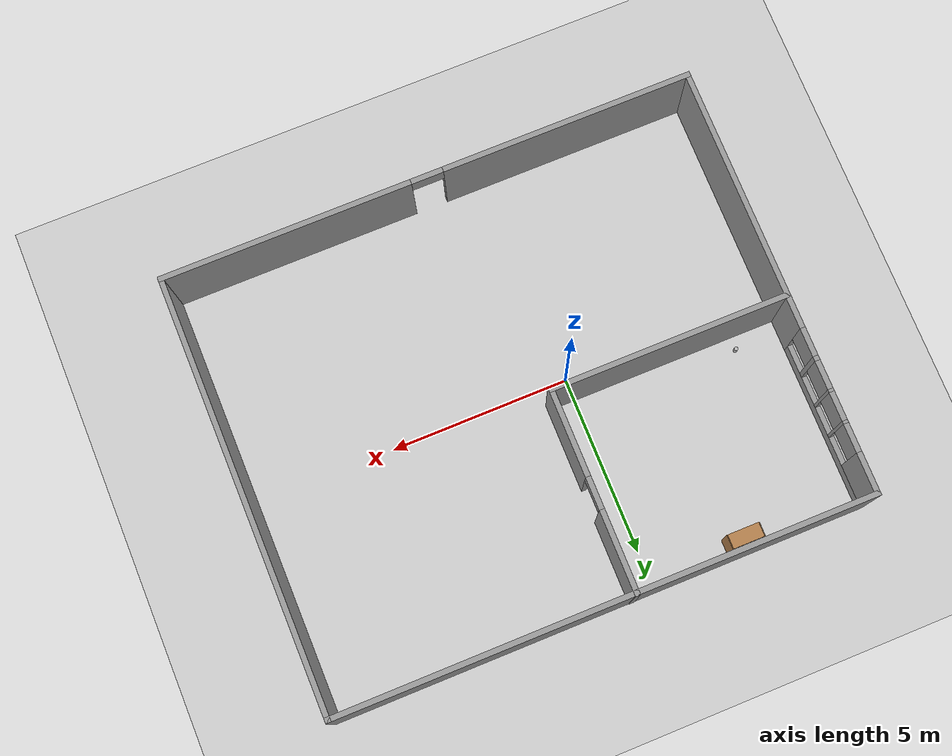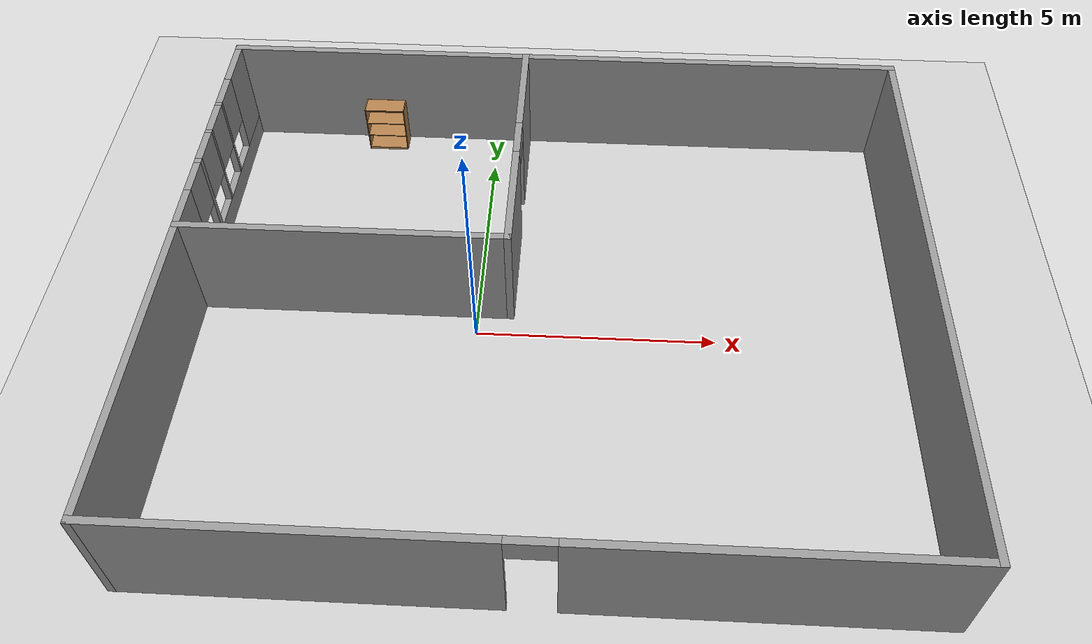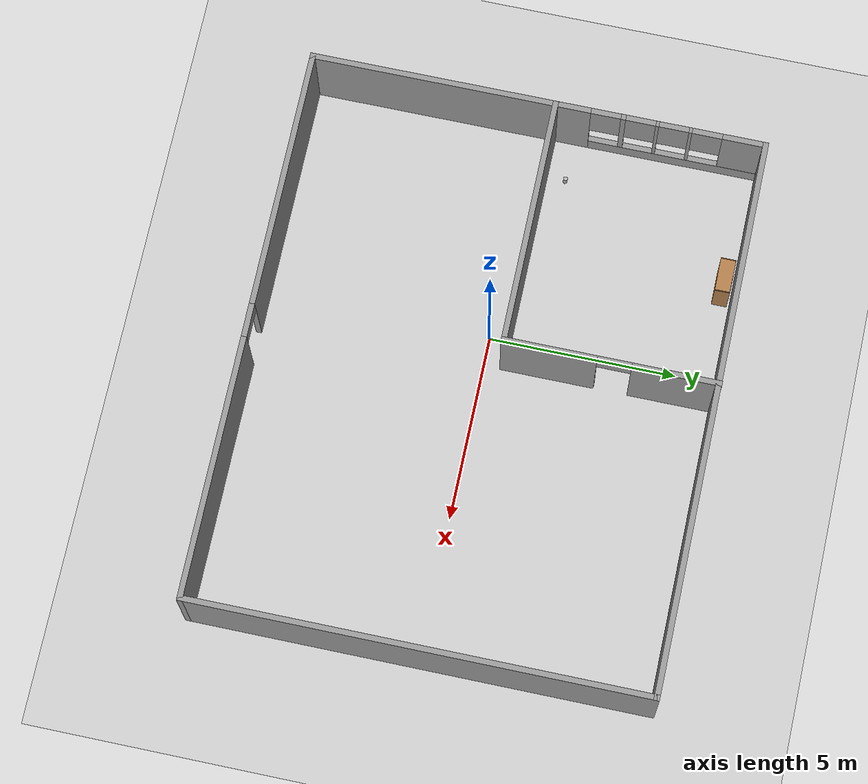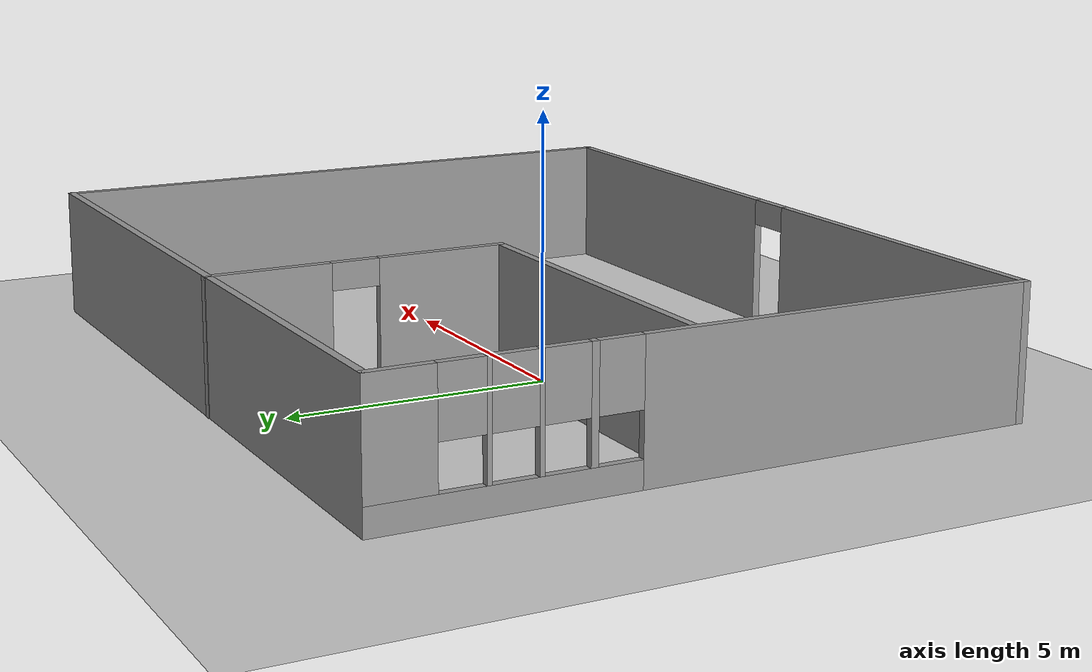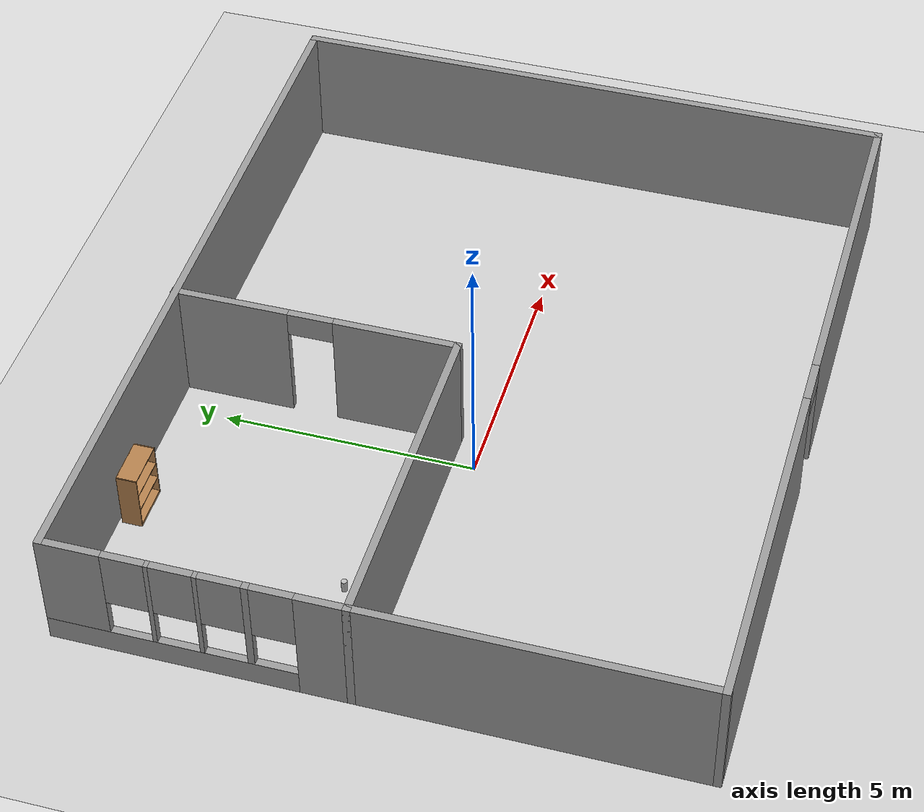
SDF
<sdf version="1.7">
 <world name="default">
  <light name="sun" type="directional">
   <pose>0 0 10 0 -0 0</pose>
   <diffuse>0.8 0.8 0.8 1</diffuse>
   <specular>0.2 0.2 0.2 1</specular>
   <attenuation>
    <range>1000</range>
    <constant>0.9</constant>
    <linear>0.01</linear>
    <quadratic>0.001</quadratic>
   </attenuation>
   <direction>-0.5 0.1 -0.9</direction>
   <spot><inner_angle>0</inner_angle><outer_angle>0</outer_angle><falloff>0</falloff></spot>
  </light>
  <model name="ground_plane">
   <static>1</static>
   <link name="link">
    <collision name="collision">
     <geometry><plane><normal>0 0 1</normal><size>100 100</size></plane></geometry>
     <surface>
      <contact><collide_bitmask>65535</collide_bitmask></contact>
      <friction><ode><mu>100</mu><mu2>50</mu2></ode></friction>
     </surface>
    </collision>
    <visual name="visual">
     <cast_shadows>0</cast_shadows>
     <geometry><plane><normal>0 0 1</normal><size>100 100</size></plane></geometry>
     <material>
      <script>
       <uri>model://Nursing_Home/materials/scripts/</uri>
       <uri>model://Nursing_Home/materials/textures/</uri>
       <name>FloorMat/Diffuse</name>
      </script>
     </material>
    </visual>
   </link>
  </model>
  <gravity>0 0 -9.8</gravity>
  <magnetic_field>6e-06 2.3e-05 -4.2e-05</magnetic_field>
  <atmosphere type="adiabatic"/>
  <physics type="ode">
   <max_step_size>0.001</max_step_size>
   <real_time_factor>1</real_time_factor>
   <real_time_update_rate>1000</real_time_update_rate>
  </physics>
  <scene><ambient>0.4 0.4 0.4 1</ambient><background>0.7 0.7 0.7 1</background><shadows>1</shadows></scene>
  <spherical_coordinates>
   <surface_model>EARTH_WGS84</surface_model>
   <latitude_deg>0</latitude_deg>
   <longitude_deg>0</longitude_deg>
   <elevation>0</elevation>
   <heading_deg>0</heading_deg>
  </spherical_coordinates>
  <model name="Nursing_Home">
   <pose>1.5165 0.049427 0 0 -0 0</pose>
   <link name="Wall_22">
    <pose>-7.425 -0.006674 0 0 -0 1.5708</pose>
    <visual name="Wall_22_Visual_0">
     <pose>-2.35623 0 1.25 0 -0 0</pose>
     <geometry><box><size>7.53754 0.15 2.5</size></box></geometry>
     <material>
      <script><uri>file://media/materials/scripts/gazebo.material</uri><name>Gazebo/Grey</name></script>
      <ambient>1 1 1 1</ambient>
     </material>
     <meta><layer>0</layer></meta>
    </visual>
    <collision name="Wall_22_Collision_0">
     <geometry><box><size>7.53754 0.15 2.5</size></box></geometry>
     <pose>-2.35623 0 1.25 0 -0 0</pose>
    </collision>
    <visual name="Wall_22_Visual_1">
     <pose>3.76877 0 0.25 0 -0 0</pose>
     <geometry><box><size>4.71246 0.15 0.5</size></box></geometry>
     <material>
      <script><uri>file://media/materials/scripts/gazebo.material</uri><name>Gazebo/Grey</name></script>
      <ambient>1 1 1 1</ambient>
     </material>
     <meta><layer>0</layer></meta>
    </visual>
    <collision name="Wall_22_Collision_1">
     <geometry><box><size>4.71246 0.15 0.5</size></box></geometry>
     <pose>3.76877 0 0.25 0 -0 0</pose>
    </collision>
    <visual name="Wall_22_Visual_2">
     <pose>2.27778 0 1.5 0 -0 0</pose>
     <geometry><box><size>0.130478 0.15 2</size></box></geometry>
     <material>
      <script><uri>file://media/materials/scripts/gazebo.material</uri><name>Gazebo/Grey</name></script>
      <ambient>1 1 1 1</ambient>
     </material>
     <meta><layer>0</layer></meta>
    </visual>
    <collision name="Wall_22_Collision_2">
     <geometry><box><size>0.130478 0.15 2</size></box></geometry>
     <pose>2.27778 0 1.5 0 -0 0</pose>
    </collision>
    <visual name="Wall_22_Visual_3">
     <pose>3.185 0 1.5 0 -0 0</pose>
     <geometry><box><size>0.083955 0.15 2</size></box></geometry>
     <material>
      <script><uri>file://media/materials/scripts/gazebo.material</uri><name>Gazebo/Grey</name></script>
      <ambient>1 1 1 1</ambient>
     </material>
     <meta><layer>0</layer></meta>
    </visual>
    <collision name="Wall_22_Collision_3">
     <geometry><box><size>0.083955 0.15 2</size></box></geometry>
     <pose>3.185 0 1.5 0 -0 0</pose>
    </collision>
    <visual name="Wall_22_Visual_4">
     <pose>4.06895 0 1.5 0 -0 0</pose>
     <geometry><box><size>0.083954 0.15 2</size></box></geometry>
     <material>
      <script><uri>file://media/materials/scripts/gazebo.material</uri><name>Gazebo/Grey</name></script>
      <ambient>1 1 1 1</ambient>
     </material>
     <meta><layer>0</layer></meta>
    </visual>
    <collision name="Wall_22_Collision_4">
     <geometry><box><size>0.083954 0.15 2</size></box></geometry>
     <pose>4.06895 0 1.5 0 -0 0</pose>
    </collision>
    <visual name="Wall_22_Visual_5">
     <pose>5.51796 0 1.5 0 -0 0</pose>
     <geometry><box><size>1.21407 0.15 2</size></box></geometry>
     <material>
      <script><uri>file://media/materials/scripts/gazebo.material</uri><name>Gazebo/Grey</name></script>
      <ambient>1 1 1 1</ambient>
     </material>
     <meta><layer>0</layer></meta>
    </visual>
    <collision name="Wall_22_Collision_5">
     <geometry><box><size>1.21407 0.15 2</size></box></geometry>
     <pose>5.51796 0 1.5 0 -0 0</pose>
    </collision>
    <visual name="Wall_22_Visual_6">
     <pose>1.81254 0 1.9 0 -0 0</pose>
     <geometry><box><size>0.8 0.15 1.2</size></box></geometry>
     <material>
      <script><uri>file://media/materials/scripts/gazebo.material</uri><name>Gazebo/Grey</name></script>
      <ambient>1 1 1 1</ambient>
     </material>
     <meta><layer>0</layer></meta>
    </visual>
    <collision name="Wall_22_Collision_6">
     <geometry><box><size>0.8 0.15 1.2</size></box></geometry>
     <pose>1.81254 0 1.9 0 -0 0</pose>
    </collision>
    <visual name="Wall_22_Visual_7">
     <pose>2.74302 0 1.9 0 -0 0</pose>
     <geometry><box><size>0.8 0.15 1.2</size></box></geometry>
     <material>
      <script><uri>file://media/materials/scripts/gazebo.material</uri><name>Gazebo/Grey</name></script>
      <ambient>1 1 1 1</ambient>
     </material>
     <meta><layer>0</layer></meta>
    </visual>
    <collision name="Wall_22_Collision_7">
     <geometry><box><size>0.8 0.15 1.2</size></box></geometry>
     <pose>2.74302 0 1.9 0 -0 0</pose>
    </collision>
    <visual name="Wall_22_Visual_8">
     <pose>3.62697 0 1.9 0 -0 0</pose>
     <geometry><box><size>0.8 0.15 1.2</size></box></geometry>
     <material>
      <script><uri>file://media/materials/scripts/gazebo.material</uri><name>Gazebo/Grey</name></script>
      <ambient>1 1 1 1</ambient>
     </material>
     <meta><layer>0</layer></meta>
    </visual>
    <collision name="Wall_22_Collision_8">
     <geometry><box><size>0.8 0.15 1.2</size></box></geometry>
     <pose>3.62697 0 1.9 0 -0 0</pose>
    </collision>
    <visual name="Wall_22_Visual_9">
     <pose>4.51093 0 1.9 0 -0 0</pose>
     <geometry><box><size>0.8 0.15 1.2</size></box></geometry>
     <material>
      <script><uri>file://media/materials/scripts/gazebo.material</uri><name>Gazebo/Grey</name></script>
      <ambient>1 1 1 1</ambient>
     </material>
     <meta><layer>0</layer></meta>
    </visual>
    <collision name="Wall_22_Collision_9">
     <geometry><box><size>0.8 0.15 1.2</size></box></geometry>
     <pose>4.51093 0 1.9 0 -0 0</pose>
    </collision>
   </link>
   <link name="Wall_23">
    <collision name="Wall_23_Collision">
     <geometry><box><size>15 0.15 2.5</size></box></geometry>
     <pose>0 0 1.25 0 -0 0</pose>
    </collision>
    <visual name="Wall_23_Visual">
     <pose>0 0 1.25 0 -0 0</pose>
     <geometry><box><size>15 0.15 2.5</size></box></geometry>
     <material>
      <script><uri>file://media/materials/scripts/gazebo.material</uri><name>Gazebo/Grey</name></script>
      <ambient>1 1 1 1</ambient>
     </material>
     <meta><layer>0</layer></meta>
    </visual>
    <pose>-0 6.04333 0 0 -0 0</pose>
   </link>
   <link name="Wall_24">
    <collision name="Wall_24_Collision">
     <geometry><box><size>12.25 0.15 2.5</size></box></geometry>
     <pose>0 0 1.25 0 -0 0</pose>
    </collision>
    <visual name="Wall_24_Visual">
     <pose>0 0 1.25 0 -0 0</pose>
     <geometry><box><size>12.25 0.15 2.5</size></box></geometry>
     <material>
      <script><uri>file://media/materials/scripts/gazebo.material</uri><name>Gazebo/Grey</name></script>
      <ambient>1 1 1 1</ambient>
     </material>
     <meta><layer>0</layer></meta>
    </visual>
    <pose>7.425 -0.006674 0 0 -0 -1.5708</pose>
   </link>
   <link name="Wall_25">
    <pose>-0 -6.05667 0 0 -0 3.14159</pose>
    <visual name="Wall_25_Visual_0">
     <pose>-3.98441 0 1.25 0 -0 0</pose>
     <geometry><box><size>7.03117 0.15 2.5</size></box></geometry>
     <material>
      <script><uri>file://media/materials/scripts/gazebo.material</uri><name>Gazebo/Grey</name></script>
      <ambient>1 1 1 1</ambient>
     </material>
     <meta><layer>0</layer></meta>
    </visual>
    <collision name="Wall_25_Collision_0">
     <geometry><box><size>7.03117 0.15 2.5</size></box></geometry>
     <pose>-3.98441 0 1.25 0 -0 0</pose>
    </collision>
    <visual name="Wall_25_Visual_1">
     <pose>3.96559 0 1.25 0 -0 0</pose>
     <geometry><box><size>7.06883 0.15 2.5</size></box></geometry>
     <material>
      <script><uri>file://media/materials/scripts/gazebo.material</uri><name>Gazebo/Grey</name></script>
      <ambient>1 1 1 1</ambient>
     </material>
     <meta><layer>0</layer></meta>
    </visual>
    <collision name="Wall_25_Collision_1">
     <geometry><box><size>7.06883 0.15 2.5</size></box></geometry>
     <pose>3.96559 0 1.25 0 -0 0</pose>
    </collision>
    <visual name="Wall_25_Visual_2">
     <pose>-0.018826 0 2.25 0 -0 0</pose>
     <geometry><box><size>0.9 0.15 0.5</size></box></geometry>
     <material>
      <script><uri>file://media/materials/scripts/gazebo.material</uri><name>Gazebo/Grey</name></script>
      <ambient>1 1 1 1</ambient>
     </material>
     <meta><layer>0</layer></meta>
    </visual>
    <collision name="Wall_25_Collision_2">
     <geometry><box><size>0.9 0.15 0.5</size></box></geometry>
     <pose>-0.018826 0 2.25 0 -0 0</pose>
    </collision>
   </link>
   <link name="Wall_27">
    <collision name="Wall_27_Collision">
     <geometry><box><size>6.75 0.15 2.5</size></box></geometry>
     <pose>0 0 1.25 0 -0 0</pose>
    </collision>
    <visual name="Wall_27_Visual">
     <pose>0 0 1.25 0 -0 0</pose>
     <geometry><box><size>6.75 0.15 2.5</size></box></geometry>
     <material>
      <script><uri>file://media/materials/scripts/gazebo.material</uri><name>Gazebo/Grey</name></script>
      <ambient>1 1 1 1</ambient>
     </material>
     <meta><layer>0</layer></meta>
    </visual>
    <pose>-4.125 0.456674 0 0 -0 0</pose>
   </link>
   <link name="Wall_28">
    <pose>-0.825 3.25667 0 0 -0 1.5708</pose>
    <visual name="Wall_28_Visual_0">
     <pose>-1.62026 0 1.25 0 -0 0</pose>
     <geometry><box><size>2.50948 0.15 2.5</size></box></geometry>
     <material>
      <script><uri>file://media/materials/scripts/gazebo.material</uri><name>Gazebo/Grey</name></script>
      <ambient>1 1 1 1</ambient>
     </material>
     <meta><layer>0</layer></meta>
    </visual>
    <collision name="Wall_28_Collision_0">
     <geometry><box><size>2.50948 0.15 2.5</size></box></geometry>
     <pose>-1.62026 0 1.25 0 -0 0</pose>
    </collision>
    <visual name="Wall_28_Visual_1">
     <pose>1.70474 0 1.25 0 -0 0</pose>
     <geometry><box><size>2.34052 0.15 2.5</size></box></geometry>
     <material>
      <script><uri>file://media/materials/scripts/gazebo.material</uri><name>Gazebo/Grey</name></script>
      <ambient>1 1 1 1</ambient>
     </material>
     <meta><layer>0</layer></meta>
    </visual>
    <collision name="Wall_28_Collision_1">
     <geometry><box><size>2.34052 0.15 2.5</size></box></geometry>
     <pose>1.70474 0 1.25 0 -0 0</pose>
    </collision>
    <visual name="Wall_28_Visual_2">
     <pose>0.084483 0 2.25 0 -0 0</pose>
     <geometry><box><size>0.9 0.15 0.5</size></box></geometry>
     <material>
      <script><uri>file://media/materials/scripts/gazebo.material</uri><name>Gazebo/Grey</name></script>
      <ambient>1 1 1 1</ambient>
     </material>
     <meta><layer>0</layer></meta>
    </visual>
    <collision name="Wall_28_Collision_2">
     <geometry><box><size>0.9 0.15 0.5</size></box></geometry>
     <pose>0.084483 0 2.25 0 -0 0</pose>
    </collision>
   </link>
   <static>1</static>
  </model>
  <model name="bookshelf">
   <static>1</static>
   <link name="link">
    <inertial><mass>1</mass></inertial>
    <collision name="back">
     <pose>0 0.005 0.6 0 -0 0</pose>
     <geometry><box><size>0.9 0.01 1.2</size></box></geometry>
    </collision>
    <visual name="visual1">
     <pose>0 0.005 0.6 0 -0 0</pose>
     <geometry><box><size>0.9 0.01 1.2</size></box></geometry>
     <material>
      <script><uri>file://media/materials/scripts/gazebo.material</uri><name>Gazebo/Wood</name></script>
     </material>
    </visual>
    <collision name="left_side">
     <pose>0.45 -0.195 0.6 0 -0 0</pose>
     <geometry><box><size>0.02 0.4 1.2</size></box></geometry>
    </collision>
    <visual name="visual2">
     <pose>0.45 -0.195 0.6 0 -0 0</pose>
     <geometry><box><size>0.02 0.4 1.2</size></box></geometry>
     <material>
      <script><uri>file://media/materials/scripts/gazebo.material</uri><name>Gazebo/Wood</name></script>
     </material>
    </visual>
    <collision name="right_side">
     <pose>-0.45 -0.195 0.6 0 -0 0</pose>
     <geometry><box><size>0.02 0.4 1.2</size></box></geometry>
    </collision>
    <visual name="visual3">
     <pose>-0.45 -0.195 0.6 0 -0 0</pose>
     <geometry><box><size>0.02 0.4 1.2</size></box></geometry>
     <material>
      <script><uri>file://media/materials/scripts/gazebo.material</uri><name>Gazebo/Wood</name></script>
     </material>
    </visual>
    <collision name="bottom">
     <pose>0 -0.195 0.03 0 -0 0</pose>
     <geometry><box><size>0.88 0.4 0.06</size></box></geometry>
    </collision>
    <visual name="visual4">
     <pose>0 -0.195 0.03 0 -0 0</pose>
     <geometry><box><size>0.88 0.4 0.06</size></box></geometry>
     <material>
      <script><uri>file://media/materials/scripts/gazebo.material</uri><name>Gazebo/Wood</name></script>
     </material>
    </visual>
    <collision name="top">
     <pose>0 -0.195 1.19 0 -0 0</pose>
     <geometry><box><size>0.88 0.4 0.02</size></box></geometry>
    </collision>
    <visual name="visual5">
     <pose>0 -0.195 1.19 0 -0 0</pose>
     <geometry><box><size>0.88 0.4 0.02</size></box></geometry>
     <material>
      <script><uri>file://media/materials/scripts/gazebo.material</uri><name>Gazebo/Wood</name></script>
     </material>
    </visual>
    <collision name="low_shelf">
     <pose>0 -0.195 0.43 0 -0 0</pose>
     <geometry><box><size>0.88 0.4 0.02</size></box></geometry>
    </collision>
    <visual name="visual6">
     <pose>0 -0.195 0.43 0 -0 0</pose>
     <geometry><box><size>0.88 0.4 0.02</size></box></geometry>
     <material>
      <script><uri>file://media/materials/scripts/gazebo.material</uri><name>Gazebo/Wood</name></script>
     </material>
    </visual>
    <collision name="high_shelf">
     <pose>0 -0.195 0.8 0 -0 0</pose>
     <geometry><box><size>0.88 0.4 0.02</size></box></geometry>
    </collision>
    <visual name="visual7">
     <pose>0 -0.195 0.8 0 -0 0</pose>
     <geometry><box><size>0.88 0.4 0.02</size></box></geometry>
     <material>
      <script><uri>file://media/materials/scripts/gazebo.material</uri><name>Gazebo/Wood</name></script>
     </material>
    </visual>
   </link>
   <pose>-2.62905 5.94257 0 0 -0 0</pose>
  </model>
  <model name="beer">
   <link name="link">
    <pose>0 0 0.115 0 -0 0</pose>
    <inertial>
     <mass>0.39</mass>
     <inertia><ixx>0.00058</ixx><ixy>0</ixy><ixz>0</ixz><iyy>0.00058</iyy><iyz>0</iyz><izz>0.00019</izz></inertia>
    </inertial>
    <collision name="collision">
     <geometry><cylinder><radius>0.055</radius><length>0.23</length></cylinder></geometry>
    </collision>
    <visual name="visual">
     <geometry><cylinder><radius>0.055</radius><length>0.23</length></cylinder></geometry>
     <material>
      <script>
       <uri>https://fuel.gazebosim.org/1.0/openrobotics/models/beer/2/files/materials/scripts</uri>
       <uri>https://fuel.gazebosim.org/1.0/openrobotics/models/beer/2/files/materials/textures</uri>
       <name>Beer/Diffuse</name>
      </script>
     </material>
    </visual>
   </link>
   <pose>-4.36853 1.11739 1.03872 0.00042 -0.000505 -1.54515</pose>
  </model>
 </world>
</sdf>
